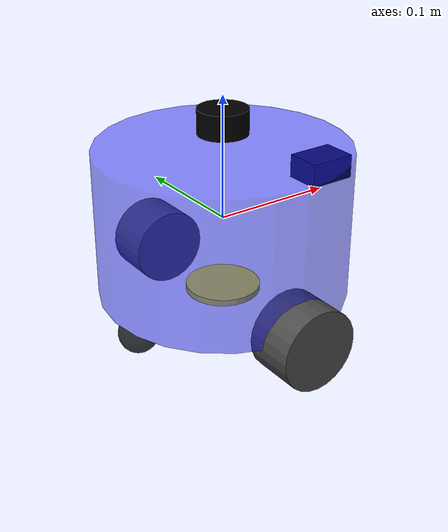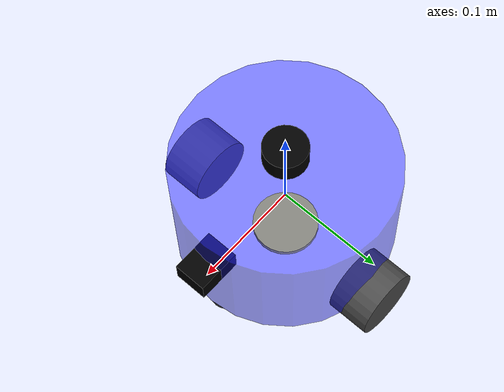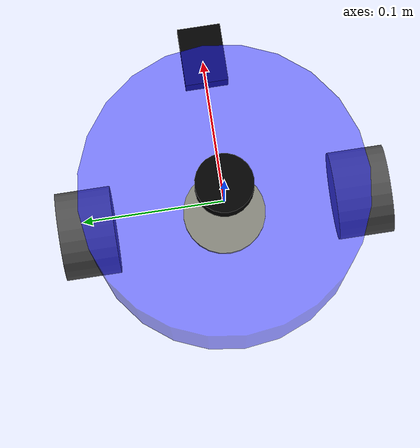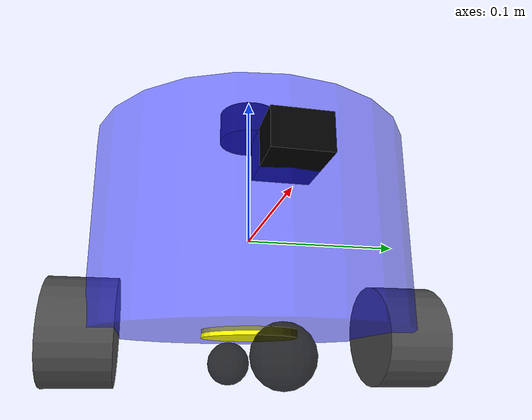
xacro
<?xml version="1.0"?>
<!-- 总装配文件：include 各模块（只含宏定义），再传参调用宏，拼出一台完整机器人 -->
<robot xmlns:xacro="http://www.ros.org/wiki/xacro" name="robot">

    <!-- 惯量计算宏（必须先引入，各模块的 macro 里会调用它） -->
    <xacro:include filename="common_inertia.xacro" />

    <!-- Gazebo 插件（差速驱动、关节状态、颜色） -->
    <xacro:include filename="plugins/gazebo_control_plugin.xacro" />

    <!-- 引入各模块（相对路径，基于本文件所在目录） -->
    <xacro:include filename="Robot_body.xacro" />
    <xacro:include filename="Robot_eye.xacro" />
    <xacro:include filename="Robot_left_wheel.xacro" />
    <xacro:include filename="Robot_right_wheek.xacro" />
    <xacro:include filename="Robot_S.xacro" />
    <xacro:include filename="Robot_caster.xacro" />
    <xacro:include filename="Robot_laser.xacro" />

    <!-- 身体：圆柱底盘 length=0.12m，radius=0.10m，mass=1.0kg -->
    <xacro:body_link length="0.12" radius="0.10" mass="1.0" />

    <!-- 眼睛（摄像头）：装在底盘正前方 -->
    <xacro:eye_link parent="base_link" xyz="0.10 0 0.02" mass="0.02" />

    <!-- 左右轮：装在底盘两侧底部 -->
    <xacro:left_wheel_link parent="base_link"
                           xyz="0 0.10 -0.06"
                           radius="0.032" length="0.04" mass="0.1" />
    <xacro:right_wheel_link parent="base_link"
                            xyz="0 -0.10 -0.06"
                            radius="0.032" length="0.04" mass="0.1" />

    <!-- 里程计：放在地面位置（底盘底部以下，与轮子接地高度一致） -->
    <xacro:odom_link parent="base_link" xyz="0 0 -0.06" mass="0.01" />

    <!-- 前后万向轮：防止两轮小车前后倾倒 -->
    <xacro:caster_link caster_name="front" xyz="0.08 0 -0.076" mass="0.01" />
    <xacro:caster_link caster_name="back" xyz="-0.08 0 -0.076" mass="0.01" />

    <!-- 2D 激光雷达：装在车体顶部 -->
    <xacro:laser_link parent="base_link" xyz="0 0 0.08" mass="0.02" />

    <!-- Gazebo 插件：差速驱动 + 关节状态 + 颜色 -->
    <xacro:gazebo_control_plugin />

</robot>

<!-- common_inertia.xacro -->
<!-- 常用几何体的惯量宏：按质量和尺寸计算惯性张量 -->
<robot xmlns:xacro="http://www.ros.org/wiki/xacro" name="common_inertia">

    <!-- 长方体：宽 w(x) 厚 d(y) 高 h(z)，可选位姿 xyz/rpy -->
    <xacro:macro name="box_inertia" params="m w d h xyz:='0 0 0' rpy:='0 0 0'">
        <inertial>
            <origin xyz="${xyz}" rpy="${rpy}" />
            <mass value="${m}" />
            <inertia
                ixx="${m * (d*d + h*h) / 12}" ixy="0" ixz="0"
                iyy="${m * (w*w + h*h) / 12}" iyz="0"
                izz="${m * (w*w + d*d) / 12}" />
        </inertial>
    </xacro:macro>

    <!-- 圆柱：半径 r，高 h，默认轴向为 z，可选位姿 xyz/rpy -->
    <xacro:macro name="cylinder_inertia" params="m r h xyz:='0 0 0' rpy:='0 0 0'">
        <inertial>
            <origin xyz="${xyz}" rpy="${rpy}" />
            <mass value="${m}" />
            <inertia
                ixx="${m * (3*r*r + h*h) / 12}" ixy="0" ixz="0"
                iyy="${m * (3*r*r + h*h) / 12}" iyz="0"
                izz="${m * r*r / 2}" />
        </inertial>
    </xacro:macro>

    <!-- 球：半径 r -->
    <xacro:macro name="sphere_inertia" params="m r xyz:='0 0 0' rpy:='0 0 0'">
        <inertial>
            <origin xyz="${xyz}" rpy="${rpy}" />
            <mass value="${m}" />
            <inertia
                ixx="${2 * m * r*r / 5}" ixy="0" ixz="0"
                iyy="${2 * m * r*r / 5}" iyz="0"
                izz="${2 * m * r*r / 5}" />
        </inertial>
    </xacro:macro>

</robot>

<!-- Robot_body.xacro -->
<!-- 身体模块：只定义宏，由总装配文件 Robot.urdf.xacro 引用调用 -->
<robot xmlns:xacro="http://www.ros.org/wiki/xacro" name="robot_body">

    <!-- 底盘：圆柱，参数化 length / radius / mass -->
    <xacro:macro name="body_link" params="length radius mass">
        <link name="base_link">
            <visual>
                <origin xyz="0 0 0" rpy="0 0 0" />
                <geometry>
                    <cylinder length="${length}" radius="${radius}" />
                </geometry>
                <material name="blue">
                    <color rgba="0.1 0.1 1.0 0.5" />
                </material>
            </visual>
            <!-- 碰撞体：与 visual 用同一份几何参数，注意不能写 material -->
            <collision>
                <origin xyz="0 0 0" rpy="0 0 0" />
                <geometry>
                    <cylinder length="${length}" radius="${radius}" />
                </geometry>
            </collision>
            <xacro:cylinder_inertia m="${mass}" r="${radius}" h="${length}" />
        </link>
    </xacro:macro>

</robot>

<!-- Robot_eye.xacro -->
<!-- 眼睛（摄像头）模块：只定义宏，由总装配文件引用调用 -->
<robot xmlns:xacro="http://www.ros.org/wiki/xacro" name="robot_eye">

    <xacro:macro name="eye_link" params="parent xyz mass">
        <link name="eye_link">
            <visual>
                <origin xyz="0 0 0" rpy="0 0 0" />
                <geometry>
                    <box size="0.04 0.03 0.02" />
                </geometry>
                <material name="black">
                    <color rgba="0.0 0.0 0.0 0.9" />
                </material>
            </visual>
            <collision>
                <origin xyz="0 0 0" rpy="0 0 0" />
                <geometry>
                    <box size="0.04 0.03 0.02" />
                </geometry>
            </collision>
            <xacro:box_inertia m="${mass}" w="0.04" d="0.03" h="0.02" />
        </link>
        <joint name="eye_joint" type="fixed">
            <parent link="${parent}" />
            <child link="eye_link" />
            <origin xyz="${xyz}" />
        </joint>
    </xacro:macro>

</robot>

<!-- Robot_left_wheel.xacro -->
<!-- 左轮模块：圆柱横放（绕 x 转 90°），continuous 关节绕 y 轴转动 -->
<robot xmlns:xacro="http://www.ros.org/wiki/xacro" name="robot_left_wheel">

    <xacro:macro name="left_wheel_link" params="parent xyz radius length mass">
        <link name="left_wheel_link">
            <visual>
                <origin xyz="0 0 0" rpy="1.57079 0 0" />
                <geometry>
                    <cylinder length="${length}" radius="${radius}" />
                </geometry>
                <material name="gray">
                    <color rgba="0.3 0.3 0.3 1.0" />
                </material>
            </visual>
            <!-- 碰撞体：位姿和几何与 visual 一致 -->
            <collision>
                <origin xyz="0 0 0" rpy="1.57079 0 0" />
                <geometry>
                    <cylinder length="${length}" radius="${radius}" />
                </geometry>
            </collision>
            <!-- 惯量坐标系同样绕 x 转 90°，让圆柱轴对齐 link 的 y 轴 -->
            <xacro:cylinder_inertia m="${mass}" r="${radius}" h="${length}"
                                    rpy="1.57079 0 0" />
        </link>
        <joint name="left_wheel_joint" type="continuous">
            <parent link="${parent}" />
            <child link="left_wheel_link" />
            <origin xyz="${xyz}" />
            <axis xyz="0 1 0" />
        </joint>
    </xacro:macro>

</robot>

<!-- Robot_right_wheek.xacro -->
<!-- 右轮模块：与左轮对称，只定义宏，由总装配文件引用调用 -->
<robot xmlns:xacro="http://www.ros.org/wiki/xacro" name="robot_right_wheel">

    <xacro:macro name="right_wheel_link" params="parent xyz radius length mass">
        <link name="right_wheel_link">
            <visual>
                <origin xyz="0 0 0" rpy="1.57079 0 0" />
                <geometry>
                    <cylinder length="${length}" radius="${radius}" />
                </geometry>
                <material name="gray">
                    <color rgba="0.3 0.3 0.3 1.0" />
                </material>
            </visual>
            <!-- 碰撞体：位姿和几何与 visual 一致 -->
            <collision>
                <origin xyz="0 0 0" rpy="1.57079 0 0" />
                <geometry>
                    <cylinder length="${length}" radius="${radius}" />
                </geometry>
            </collision>
            <!-- 惯量坐标系同样绕 x 转 90°，让圆柱轴对齐 link 的 y 轴 -->
            <xacro:cylinder_inertia m="${mass}" r="${radius}" h="${length}"
                                    rpy="1.57079 0 0" />
        </link>
        <joint name="right_wheel_joint" type="continuous">
            <parent link="${parent}" />
            <child link="right_wheel_link" />
            <origin xyz="${xyz}" />
            <axis xyz="0 1 0" />
        </joint>
    </xacro:macro>

</robot>

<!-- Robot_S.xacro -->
<!-- 里程计（odom）模块：在底盘正下方的地面位置放一个扁平标记，表示里程计参考坐标系 -->
<robot xmlns:xacro="http://www.ros.org/wiki/xacro" name="robot_odom">

    <xacro:macro name="odom_link" params="parent xyz mass">
        <link name="odom_link">
            <visual>
                <origin xyz="0 0 0" rpy="0 0 0" />
                <geometry>
                    <cylinder length="0.005" radius="0.03" />
                </geometry>
                <material name="yellow">
                    <color rgba="1.0 1.0 0.0 0.9" />
                </material>
            </visual>
            <!-- 注意：odom 是虚拟坐标系标记，不添加 collision，避免参与物理碰撞 -->
            <xacro:cylinder_inertia m="${mass}" r="0.03" h="0.005" />
        </link>
        <joint name="odom_joint" type="fixed">
            <parent link="${parent}" />
            <child link="odom_link" />
            <origin xyz="${xyz}" />
        </joint>
    </xacro:macro>

</robot>

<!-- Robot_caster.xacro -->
<!--
  万向轮（caster）模块：球体支撑，防止两轮小车前后倾倒
  - 球心放在 z=-0.076（半径 0.016 → 底部正好在 z=-0.092，与轮子接地高度一致）
  - Gazebo 里把摩擦设为 0，让它只是"滑"着走，不阻碍转向
-->
<robot xmlns:xacro="http://www.ros.org/wiki/xacro" name="robot_caster">

    <xacro:macro name="caster_link" params="caster_name xyz mass">
        <link name="${caster_name}_caster_link">
            <visual>
                <origin xyz="0 0 0" rpy="0 0 0" />
                <geometry>
                    <sphere radius="0.016" />
                </geometry>
                <material name="black">
                    <color rgba="0.0 0.0 0.0 0.8" />
                </material>
            </visual>
            <collision>
                <origin xyz="0 0 0" rpy="0 0 0" />
                <geometry>
                    <sphere radius="0.016" />
                </geometry>
            </collision>
            <xacro:sphere_inertia m="${mass}" r="0.016" />
        </link>

        <!-- Gazebo：零摩擦，避免万向轮拖住车身 -->
        <gazebo reference="${caster_name}_caster_link">
            <mu1 value="0.0" />
            <mu2 value="0.0" />
            <kp value="1000000000.0" />
            <kd value="1.0" />
        </gazebo>

        <joint name="${caster_name}_caster_joint" type="fixed">
            <parent link="base_link" />
            <child link="${caster_name}_caster_link" />
            <origin xyz="${xyz}" />
        </joint>
    </xacro:macro>

</robot>

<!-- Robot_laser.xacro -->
<!-- 2D 激光雷达模块：装在车体顶部，用于 SLAM 建图和导航避障 -->
<robot xmlns:xacro="http://www.ros.org/wiki/xacro" name="robot_laser">

    <xacro:macro name="laser_link" params="parent xyz mass">
        <link name="laser_link">
            <visual>
                <origin xyz="0 0 0" rpy="0 0 0" />
                <geometry>
                    <cylinder length="0.02" radius="0.02" />
                </geometry>
                <material name="black">
                    <color rgba="0.0 0.0 0.0 1.0" />
                </material>
            </visual>
            <collision>
                <origin xyz="0 0 0" rpy="0 0 0" />
                <geometry>
                    <cylinder length="0.02" radius="0.02" />
                </geometry>
            </collision>
            <xacro:cylinder_inertia m="${mass}" r="0.02" h="0.02" />
        </link>
        <joint name="laser_joint" type="fixed">
            <parent link="${parent}" />
            <child link="laser_link" />
            <origin xyz="${xyz}" />
        </joint>
    </xacro:macro>

</robot>
